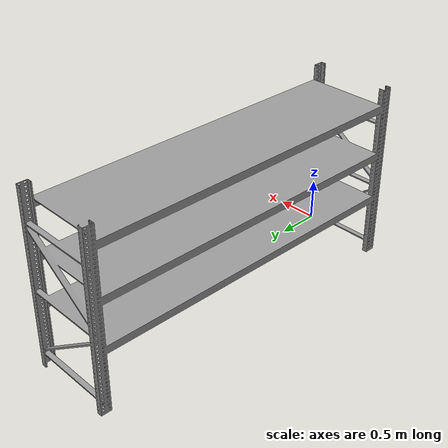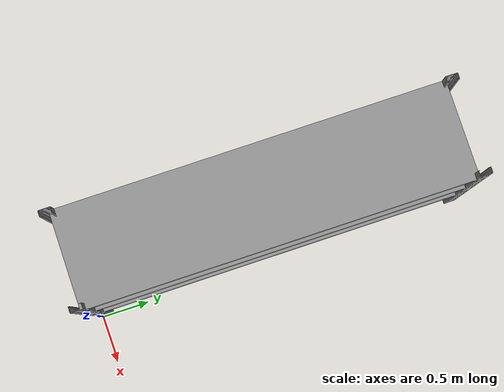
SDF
<?xml version="1.0" ?>
<sdf version="1.5">
  <model name="shelving_long">
    <static>true</static>
    <link name='defaultModel_0::custom_0'>
      <pose>0 0 0 0 0 0</pose>
      <gravity>1</gravity>
      <self_collide>0</self_collide>
      <kinematic>0</kinematic>
      <visual name='custom_0_visual'>
        <pose>0 0 0 0 -1.57079 0</pose>
        <geometry>
          <mesh>
            <uri>model://shelving_long/shelving_long.dae</uri>
            <scale>0.015 0.04 0.02</scale>
          </mesh>
        </geometry>
        <material>
          <script>
            <uri>file://media/materials/scripts/gazebo.material</uri>
            <name>Gazebo/Grey</name>
          </script>
        </material>
      </visual>
      <collision name='defaultModel_0::custom_0_collision'>
        <geometry>
          <mesh>
            <uri>model://shelving_long/shelving_long.dae</uri>
            <scale>0.015 0.04 0.02</scale>
          </mesh>
        </geometry>
        <pose>0 0 0 0 -1.57079 0</pose>
      </collision>
    </link>
  </model>
</sdf>
